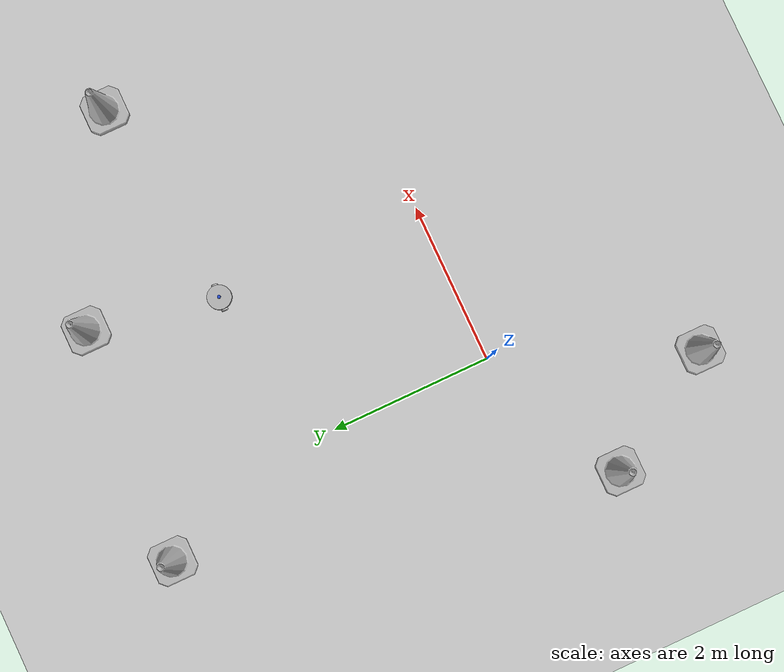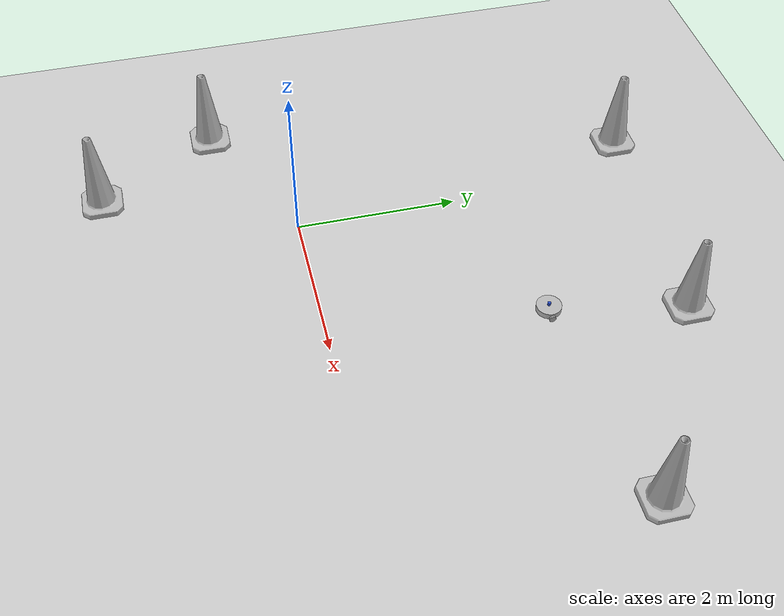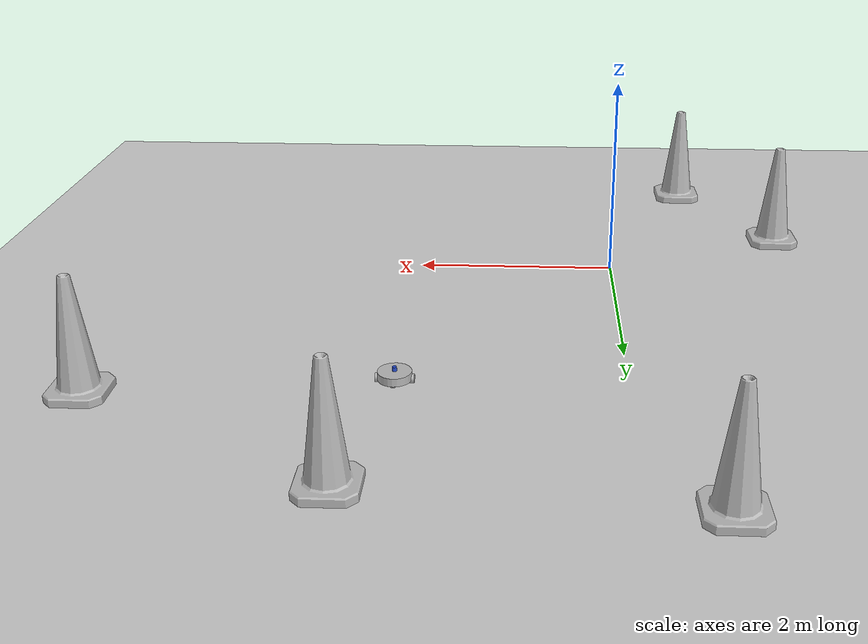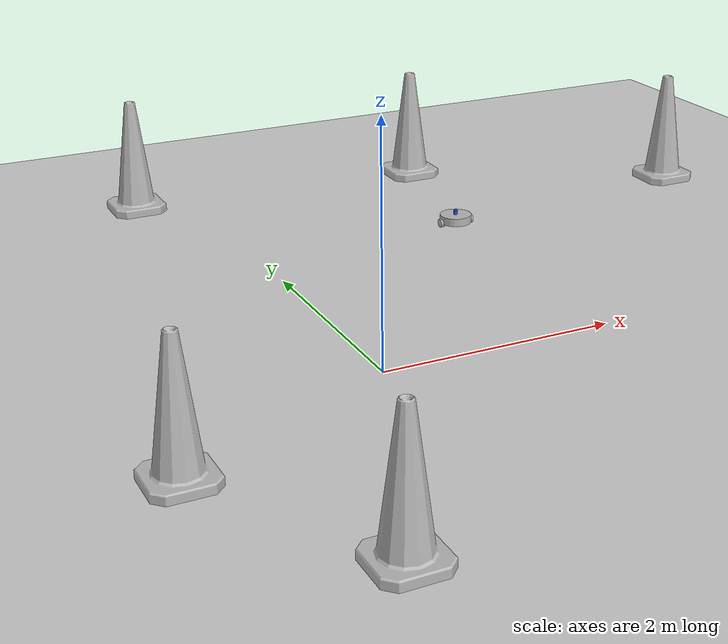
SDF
<sdf version="1.7">
 <world name="lidar_test_world">
  <model name="ground_plane">
   <static>1</static>
   <link name="link">
    <collision name="collision">
     <geometry><plane><normal>0 0 1</normal><size>100 100</size></plane></geometry>
     <surface>
      <contact><collide_bitmask>65535</collide_bitmask></contact>
      <friction><ode><mu>100</mu><mu2>50</mu2></ode></friction>
     </surface>
    </collision>
    <visual name="visual">
     <cast_shadows>0</cast_shadows>
     <geometry><plane><normal>0 0 1</normal><size>100 100</size></plane></geometry>
     <material>
      <script><uri>file://media/materials/scripts/gazebo.material</uri><name>Gazebo/Grey</name></script>
     </material>
    </visual>
   </link>
  </model>
  <light name="sun" type="directional">
   <pose>0 0 10 0 -0 0</pose>
   <diffuse>0.8 0.8 0.8 1</diffuse>
   <specular>0.2 0.2 0.2 1</specular>
   <attenuation>
    <range>1000</range>
    <constant>0.9</constant>
    <linear>0.01</linear>
    <quadratic>0.001</quadratic>
   </attenuation>
   <direction>-0.5 0.1 -0.9</direction>
   <spot><inner_angle>0</inner_angle><outer_angle>0</outer_angle><falloff>0</falloff></spot>
  </light>
  <gravity>0 0 -9.8</gravity>
  <magnetic_field>6e-06 2.3e-05 -4.2e-05</magnetic_field>
  <atmosphere type="adiabatic"/>
  <physics type="ode">
   <max_step_size>0.001</max_step_size>
   <real_time_factor>1</real_time_factor>
   <real_time_update_rate>1000</real_time_update_rate>
  </physics>
  <scene><ambient>0.4 0.4 0.4 1</ambient><background>0.7 0.7 0.7 1</background><shadows>1</shadows></scene>
  <audio><device>default</device></audio>
  <spherical_coordinates>
   <surface_model>EARTH_WGS84</surface_model>
   <latitude_deg>0</latitude_deg>
   <longitude_deg>0</longitude_deg>
   <elevation>0</elevation>
   <heading_deg>0</heading_deg>
  </spherical_coordinates>
  <model name="amr">
   <link name="base_footprint">
    <inertial>
     <pose>0.003077 0 0.002923 0 -0 0</pose>
     <mass>6.5</mass>
     <inertia>
      <ixx>0.0326982</ixx>
      <ixy>0.001</ixy>
      <ixz>0.00105846</ixz>
      <iyy>0.0346367</iyy>
      <iyz>0.001</iyz>
      <izz>0.0531385</izz>
     </inertia>
    </inertial>
    <collision name="base_footprint_fixed_joint_lump__base_link_collision">
     <pose>0 0 0.03 0 -0 0</pose>
     <geometry><cylinder><length>0.075</length><radius>0.15</radius></cylinder></geometry>
    </collision>
    <collision name="base_footprint_fixed_joint_lump__caster_wheel_collision_1">
     <pose>0.1 0 0 0 -0 0</pose>
     <geometry><sphere><radius>0.04</radius></sphere></geometry>
    </collision>
    <collision name="base_footprint_fixed_joint_lump__lidar_link_collision_2">
     <pose>0 0 0.0875 0 -0 0</pose>
     <geometry><cylinder><length>0.04</length><radius>0.02</radius></cylinder></geometry>
    </collision>
    <visual name="base_footprint_fixed_joint_lump__base_link_visual">
     <pose>0 0 0.03 0 -0 0</pose>
     <geometry><cylinder><length>0.075</length><radius>0.15</radius></cylinder></geometry>
    </visual>
    <visual name="base_footprint_fixed_joint_lump__caster_wheel_visual_1">
     <pose>0.1 0 0 0 -0 0</pose>
     <geometry><sphere><radius>0.04</radius></sphere></geometry>
    </visual>
    <visual name="base_footprint_fixed_joint_lump__imu_link_visual_2">
     <pose>0 0 0.015 0 -0 0</pose>
     <geometry><box><size>0.04 0.04 0.02</size></box></geometry>
    </visual>
    <visual name="base_footprint_fixed_joint_lump__lidar_link_visual_3">
     <pose>0 0 0.0875 0 -0 0</pose>
     <geometry><cylinder><length>0.04</length><radius>0.02</radius></cylinder></geometry>
     <material>
      <script><name>Gazebo/Blue</name><uri>file://media/materials/scripts/gazebo.material</uri></script>
     </material>
    </visual>
    <sensor name="imu_sensor" type="imu">
     <always_on>1</always_on>
     <update_rate>50</update_rate>
     <visualize>1</visualize>
     <plugin name="imu_plugin" filename="libgazebo_ros_imu_sensor.so">
      <ros><namespace>/</namespace><remapping>~/out:=imu</remapping></ros>
      <frame_name>imu_link</frame_name>
     </plugin>
     <pose>0 0 0.015 0 -0 0</pose>
    </sensor>
    <sensor name="laser" type="ray">
     <visualize>1</visualize>
     <update_rate>10</update_rate>
     <ray>
      <scan>
       <horizontal>
        <samples>360</samples>
        <resolution>1</resolution>
        <min_angle>-3.14</min_angle>
        <max_angle>3.14</max_angle>
       </horizontal>
       <vertical><samples>1</samples><min_angle>0</min_angle><max_angle>0</max_angle></vertical>
      </scan>
      <range><min>0.3</min><max>12</max><resolution>0.01</resolution></range>
     </ray>
     <plugin name="lidar_plugin" filename="libgazebo_ros_ray_sensor.so">
      <ros><argument>~/out:=scan</argument></ros>
      <output_type>sensor_msgs/LaserScan</output_type>
      <frame_name>lidar_link</frame_name>
     </plugin>
     <pose>0 0 0.0875 0 -0 0</pose>
    </sensor>
   </link>
   <joint name="left_wheel_joint" type="revolute">
    <pose relative_to="base_footprint">0 0.15 0 0 -0 0</pose>
    <parent>base_footprint</parent>
    <child>left_wheel</child>
    <axis>
     <xyz>0 1 0</xyz>
     <limit><lower>-1e+16</lower><upper>1e+16</upper></limit>
     <dynamics><spring_reference>0</spring_reference><spring_stiffness>0</spring_stiffness></dynamics>
    </axis>
   </joint>
   <link name="left_wheel">
    <pose relative_to="left_wheel_joint">0 0 0 0 -0 0</pose>
    <inertial>
     <mass>0.5</mass>
     <inertia><ixx>0.001</ixx><ixy>0</ixy><ixz>0</ixz><iyy>0.001</iyy><iyz>0</iyz><izz>0.001</izz></inertia>
    </inertial>
    <collision name="left_wheel_collision">
     <pose>0 0 0 1.5708 -0 0</pose>
     <geometry><cylinder><length>0.04</length><radius>0.04</radius></cylinder></geometry>
     <surface><friction><ode><mu>2</mu><mu2>2</mu2></ode></friction></surface>
    </collision>
    <visual name="left_wheel_visual">
     <pose>0 0 0 1.5708 -0 0</pose>
     <geometry><cylinder><length>0.04</length><radius>0.04</radius></cylinder></geometry>
    </visual>
   </link>
   <joint name="right_wheel_joint" type="revolute">
    <pose relative_to="base_footprint">0 -0.15 0 0 -0 0</pose>
    <parent>base_footprint</parent>
    <child>right_wheel</child>
    <axis>
     <xyz>0 1 0</xyz>
     <limit><lower>-1e+16</lower><upper>1e+16</upper></limit>
     <dynamics><spring_reference>0</spring_reference><spring_stiffness>0</spring_stiffness></dynamics>
    </axis>
   </joint>
   <link name="right_wheel">
    <pose relative_to="right_wheel_joint">0 0 0 0 -0 0</pose>
    <inertial>
     <mass>0.5</mass>
     <inertia><ixx>0.001</ixx><ixy>0</ixy><ixz>0</ixz><iyy>0.001</iyy><iyz>0</iyz><izz>0.001</izz></inertia>
    </inertial>
    <collision name="right_wheel_collision">
     <pose>0 0 0 1.5708 -0 0</pose>
     <geometry><cylinder><length>0.04</length><radius>0.04</radius></cylinder></geometry>
     <surface><friction><ode><mu>2</mu><mu2>2</mu2></ode></friction></surface>
    </collision>
    <visual name="right_wheel_visual">
     <pose>0 0 0 1.5708 -0 0</pose>
     <geometry><cylinder><length>0.04</length><radius>0.04</radius></cylinder></geometry>
    </visual>
   </link>
   <static>0</static>
   <plugin name="gazebo_ros2_control" filename="libgazebo_ros2_control.so">
    <parameters>/home/akshat/amr_ws/src/amr_description/config/controllers.yaml</parameters>
   </plugin>
   <pose>2.01322 2.58562 0.04 0 2e-06 1.54593</pose>
  </model>
  <model name="Construction Cone">
   <link name="link">
    <collision name="collision">
     <geometry>
      <mesh><scale>10 10 10</scale><uri>model://construction_cone/meshes/construction_cone.dae</uri></mesh>
     </geometry>
    </collision>
    <visual name="visual">
     <geometry>
      <mesh><scale>10 10 10</scale><uri>model://construction_cone/meshes/construction_cone.dae</uri></mesh>
     </geometry>
    </visual>
    <inertial>
     <inertia><ixx>1</ixx><ixy>0</ixy><ixz>0</ixz><iyy>1</iyy><iyz>0</iyz><izz>1</izz></inertia>
     <mass>1</mass>
    </inertial>
   </link>
   <pose>-0.595028 4.38976 -0 0 -0 0</pose>
  </model>
  <model name="Construction Cone_0">
   <link name="link">
    <collision name="collision">
     <geometry>
      <mesh><scale>10 10 10</scale><uri>model://construction_cone/meshes/construction_cone.dae</uri></mesh>
     </geometry>
    </collision>
    <visual name="visual">
     <geometry>
      <mesh><scale>10 10 10</scale><uri>model://construction_cone/meshes/construction_cone.dae</uri></mesh>
     </geometry>
    </visual>
    <inertial>
     <inertia><ixx>1</ixx><ixy>0</ixy><ixz>0</ixz><iyy>1</iyy><iyz>0</iyz><izz>1</izz></inertia>
     <mass>1</mass>
    </inertial>
   </link>
   <pose>4.65114 2.90268 -0 0 -0 0</pose>
  </model>
  <model name="Construction Cone_1">
   <link name="link">
    <collision name="collision">
     <geometry>
      <mesh><scale>10 10 10</scale><uri>model://construction_cone/meshes/construction_cone.dae</uri></mesh>
     </geometry>
    </collision>
    <visual name="visual">
     <geometry>
      <mesh><scale>10 10 10</scale><uri>model://construction_cone/meshes/construction_cone.dae</uri></mesh>
     </geometry>
    </visual>
    <inertial>
     <inertia><ixx>1</ixx><ixy>0</ixy><ixz>0</ixz><iyy>1</iyy><iyz>0</iyz><izz>1</izz></inertia>
     <mass>1</mass>
    </inertial>
   </link>
   <pose>2.32491 4.19531 0 -0 -0 -0</pose>
  </model>
  <model name="Construction Cone_2">
   <link name="link">
    <collision name="collision">
     <geometry>
      <mesh><scale>10 10 10</scale><uri>model://construction_cone/meshes/construction_cone.dae</uri></mesh>
     </geometry>
    </collision>
    <visual name="visual">
     <geometry>
      <mesh><scale>10 10 10</scale><uri>model://construction_cone/meshes/construction_cone.dae</uri></mesh>
     </geometry>
    </visual>
    <inertial>
     <inertia><ixx>1</ixx><ixy>0</ixy><ixz>0</ixz><iyy>1</iyy><iyz>0</iyz><izz>1</izz></inertia>
     <mass>1</mass>
    </inertial>
   </link>
   <pose>-1.8712 -0.866054 -0 0 -0 0</pose>
  </model>
  <model name="Construction Cone_3">
   <link name="link">
    <collision name="collision">
     <geometry>
      <mesh><scale>10 10 10</scale><uri>model://construction_cone/meshes/construction_cone.dae</uri></mesh>
     </geometry>
    </collision>
    <visual name="visual">
     <geometry>
      <mesh><scale>10 10 10</scale><uri>model://construction_cone/meshes/construction_cone.dae</uri></mesh>
     </geometry>
    </visual>
    <inertial>
     <inertia><ixx>1</ixx><ixy>0</ixy><ixz>0</ixz><iyy>1</iyy><iyz>0</iyz><izz>1</izz></inertia>
     <mass>1</mass>
    </inertial>
   </link>
   <pose>-0.973059 -2.35082 -0 0 -1e-06 0</pose>
  </model>
 </world>
</sdf>
